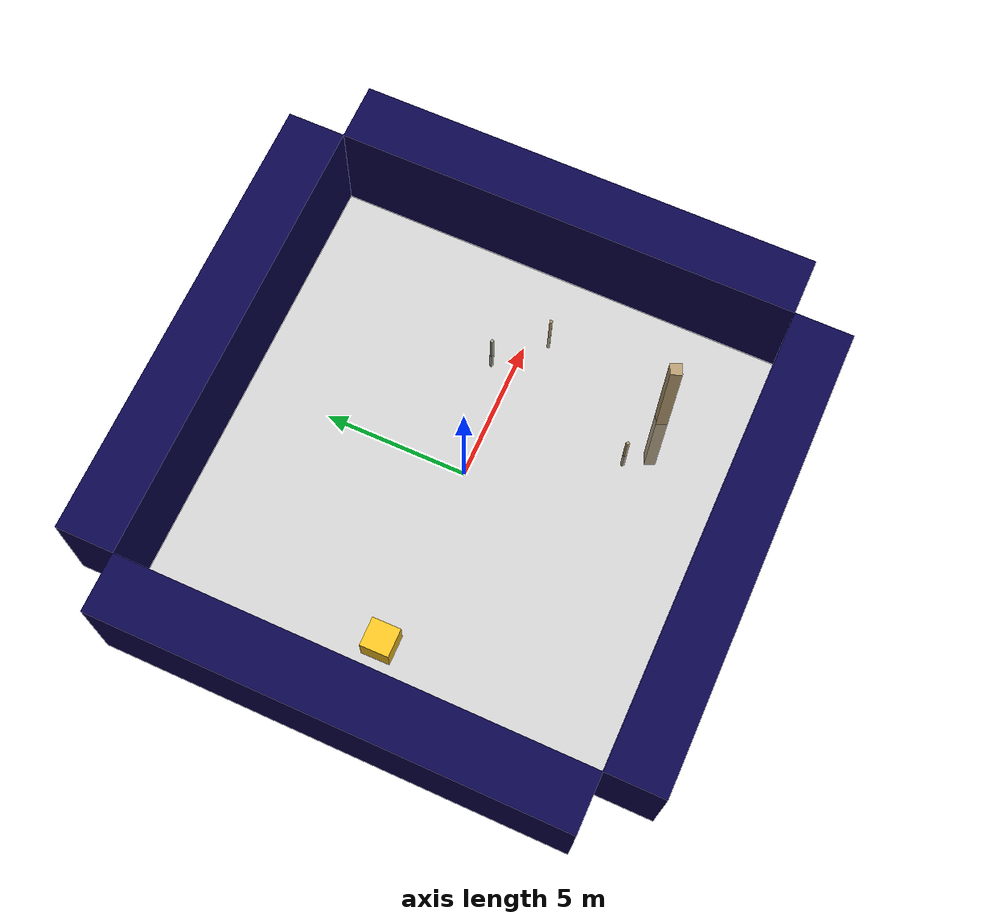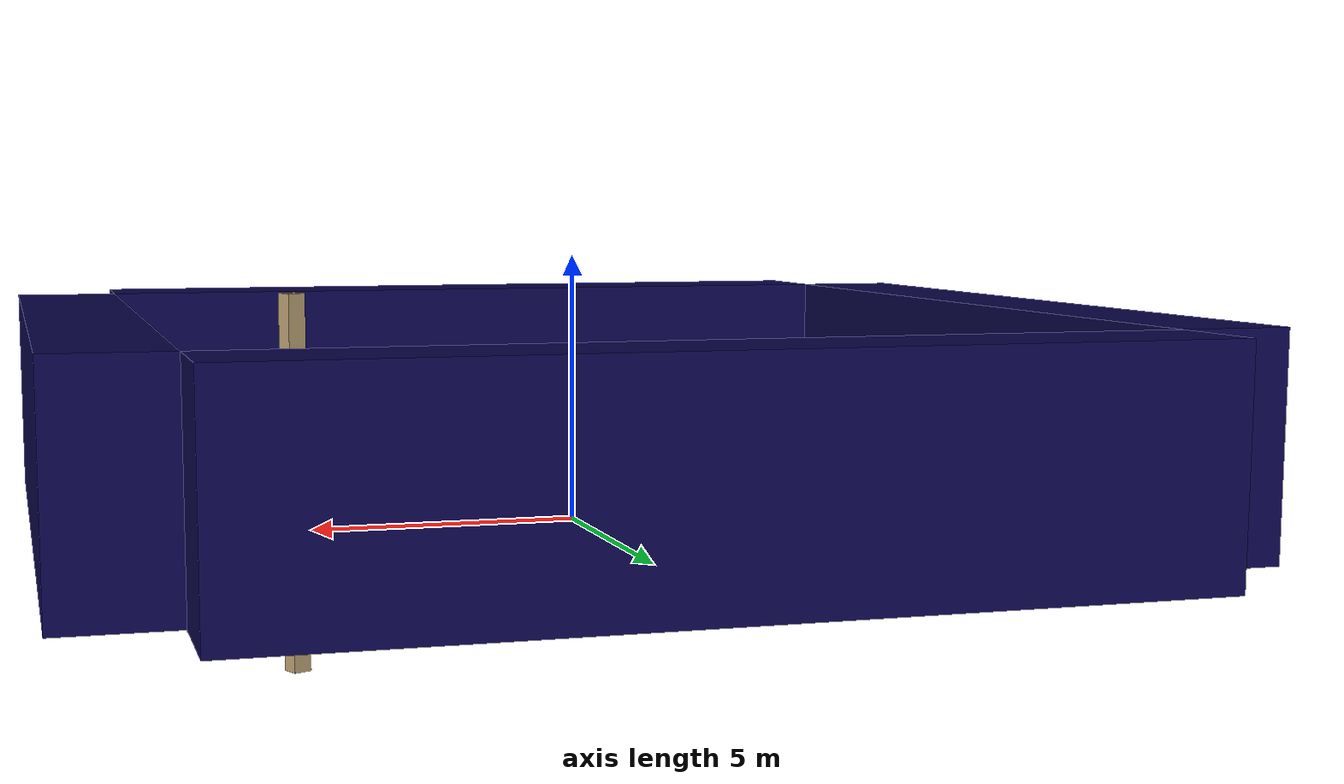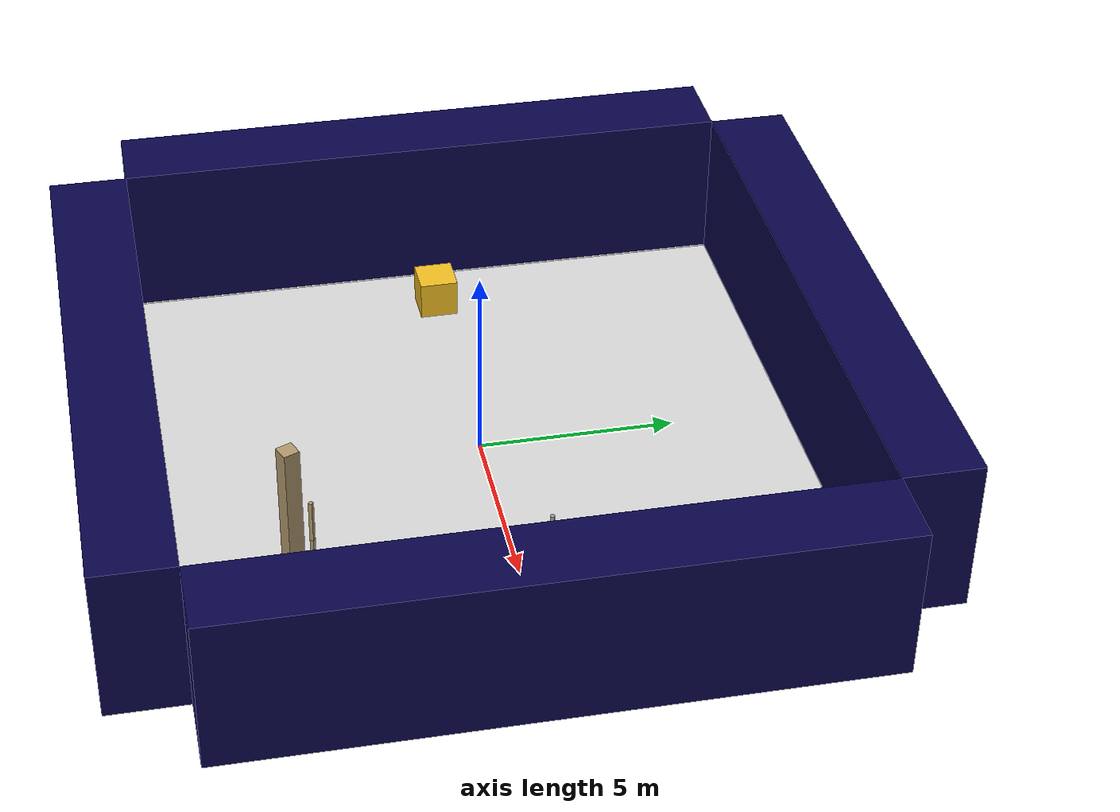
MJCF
<mujoco model="unnamed_model">
  <default>
    <default class="/" />
    <default class="border/" />
    <default class="border_1/" />
    <default class="border_2/" />
    <default class="border_3/" />
    <default class="light/" />
    <default class="agent/" />
    <default class="stone0/" />
    <default class="stone1/" />
    <default class="apple/" />
    <default class="apple_1/" />
  </default>
  <worldbody>
    <body name="border/">
      <body name="border/border" pos="0 9 2">
        <geom name="border/border_geom" class="border/" type="box" size="8.0 1.0 2.0" rgba="0.035 0.016 0.29 1.0" />
      </body>
    </body>
    <body name="border_1/">
      <body name="border_1/border" pos="0 -9 2">
        <geom name="border_1/border_geom" class="border_1/" type="box" size="8.0 1.0 2.0" rgba="0.035 0.016 0.29 1.0" />
      </body>
    </body>
    <body name="border_2/">
      <body name="border_2/border" pos="9 0 2">
        <geom name="border_2/border_geom" class="border_2/" type="box" size="1.0 8.0 2.0" rgba="0.035 0.016 0.29 1.0" />
      </body>
    </body>
    <body name="border_3/">
      <body name="border_3/border" pos="-9 0 2">
        <geom name="border_3/border_geom" class="border_3/" type="box" size="1.0 8.0 2.0" rgba="0.035 0.016 0.29 1.0" />
      </body>
    </body>
    <body name="light/">
      <body name="light/light" pos="0 0 15">
        <geom name="light/light_geom" class="light/" size="0.5" rgba="1.0 1.0 1.0 0.0" />
        <light name="light//unnamed_light_0" class="light/" />
      </body>
    </body>
    <body euler="0 0 270.66005267883389" name="agent/" pos="-6.4000000000000004 0 0.5">
      <joint name="agent/boxagent_freeJoint/" class="/" type="free" />
      <body name="agent/agent" pos="0 0 0" euler="0 0 0">
        <geom name="agent/boxagent_geom" class="agent/" type="box" size="0.5 0.5 0.5" rgba="0.949 0.7451 0.1333 1.0" euler="0 0 0" />
        <camera name="agent/boxagent_camera" class="agent/" fovy="90" pos="0 0 0.25" euler="-90 180 0" />
      </body>
    </body>
    <body name="stone0/">
      <body name="stone0/stone0" pos="2.8294999999999999 -4.6387999999999998 0.10000000000000001" euler="0 0 52.551145788591498">
        <geom name="stone0/stone_geom" class="stone0/" type="box" size="0.05 0.05 1.0" rgba="0.6980392156862745 0.6 0.43137254901960786 1.0" />
      </body>
    </body>
    <body name="stone1/">
      <body name="stone1/stone1" pos="4.5655999999999999 -5.2712000000000003 0.10000000000000001" euler="0 0 -66.962133081610759">
        <geom name="stone1/stone_geom" class="stone1/" type="box" size="0.2 0.2 4.0" rgba="0.6980392156862745 0.6 0.43137254901960786 1.0" />
      </body>
    </body>
    <body name="apple/">
      <body name="apple/apple" pos="4.3760000000000003 0.91380000000000017 0.10000000000000001" euler="0 0 -115.86387038800028">
        <geom name="apple/apple_geom" class="apple/" type="box" size="0.05 0.05 1.0" rgba="0.6470588235294118 0.6392156862745098 0.5686274509803921 1.0" />
      </body>
    </body>
    <body name="apple_1/">
      <body name="apple_1/apple" pos="5.8570000000000002 -0.60459999999999958 0.10000000000000001" euler="0 0 103.92878794307177">
        <geom name="apple_1/apple_geom" class="apple_1/" type="box" size="0.05 0.05 1.0" rgba="0.6980392156862745 0.6 0.43137254901960786 1.0" />
      </body>
    </body>
    <geom name="base_plane" class="/" type="plane" size="8 8 0.10000000000000001" />
  </worldbody>
</mujoco>
